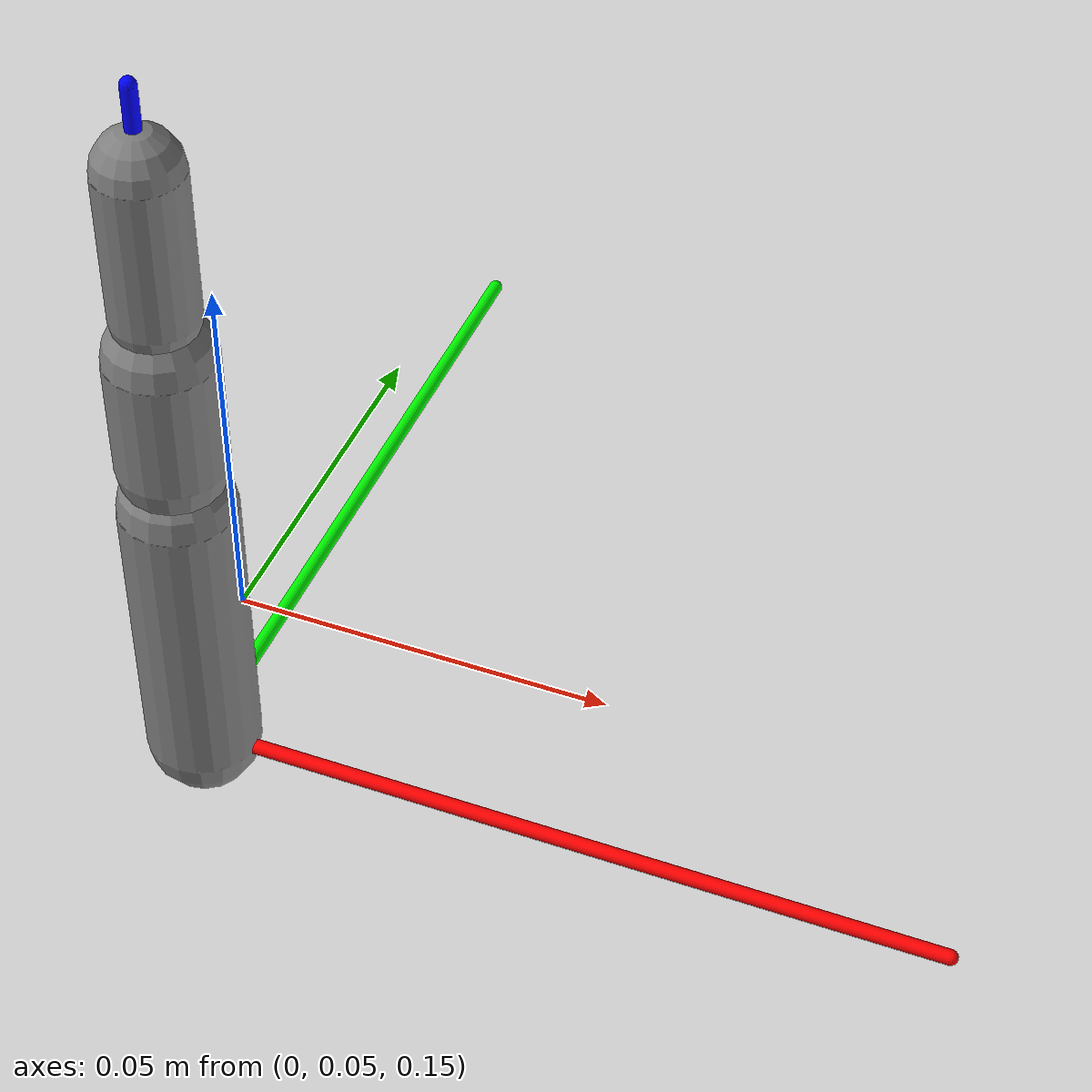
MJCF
<mujoco>
    <worldbody>
        <body name="robot0:ffknuckle" pos="-0.00135 0.03919 0.13556" euler = "-0.0395 0 0">
            <geom name="x" fromto="0 0 0 0.1 0 0" type="capsule" size="0.001 0.01" rgba = "1 0 0 1" contype="0" conaffinity="0"/>
            <geom name="y" fromto="0 0 0 0 0.1 0" type="capsule" size="0.001 0.01" rgba = "0 1 0 1" contype="0" conaffinity="0"/>
            <geom name="z" fromto="0 0 0 0 0 0.1" type="capsule" size="0.001 0.01" rgba = "0 0 1 1" contype="0" conaffinity="0"/>
            <body name="robot0:ffproximal" pos="0 0 0">
                <joint name="robot0:FFJ2" type="hinge" pos="0 0 0" axis="0 1 0" range="0 1.571" damping="0.1"></joint>
                <geom name="robot0:C_ffproximal" type="capsule" pos="0 0 0.02" size="0.0075 0.02"></geom>
                <body name="robot0:ffmiddle" pos="0 0 0.046">
                    <joint name="robot0:FFJ1" type="hinge" pos="0 0 0" axis="0 1 0" range="0 1.571"  damping="0.1"></joint>
                    <geom name="robot0:C_ffmiddle" type="capsule" pos="0 0 0.009" size="0.007 0.008"></geom>
                    <body name="robot0:ffdistal" pos="0 0 0.023">
                        <joint name="robot0:FFJ0" type="hinge" pos="0 0 0" axis="0 1 0" range="0 1.571"  damping="0.1"></joint>
                        <geom name="robot0:C_ffdistal" type="capsule" pos="0 0 0.01" size="0.0055 0.01"></geom>
                    </body>
                </body>
            </body>
        </body>
    </worldbody>
    <tendon>
		<fixed name="robot0:T_FFJ2c" limited="true" range="-0.0001 0.0001" solreflimit="0.002 0.1" >
            <joint joint="robot0:FFJ2" coef="0.003996"></joint>
            <joint joint="robot0:FFJ0" coef="-0.005806"></joint>
        </fixed>
        <fixed name="robot0:T_FFJ1c" limited="true" range="-0.0001 0.0001" solreflimit="0.002 0.1" >
            <joint joint="robot0:FFJ2" coef="0.007094"></joint>
            <joint joint="robot0:FFJ1" coef="-0.005806"></joint>
        </fixed>
    </tendon>
    <actuator>
        <position name="robot0:A_FFJ2" joint="robot0:FFJ2" ctrllimited="true" ctrlrange="0 1.571" kp="3" forcerange="-10 10"></position>
    </actuator>
</mujoco>
